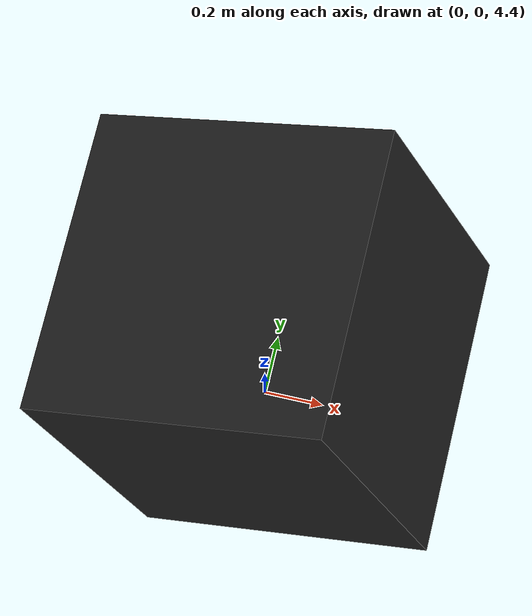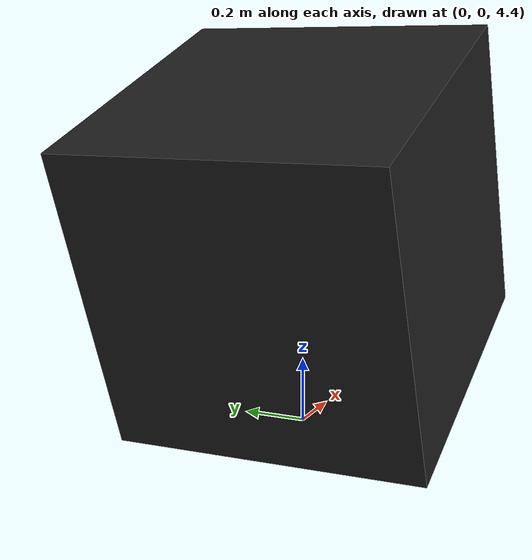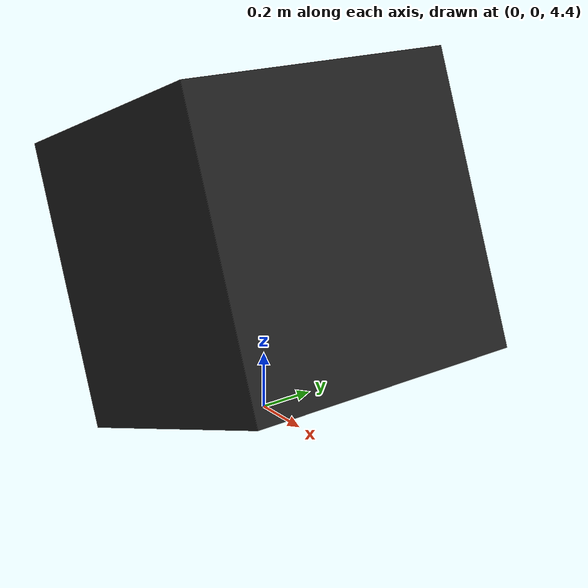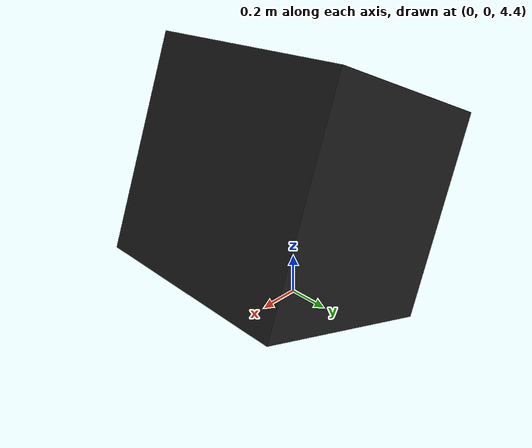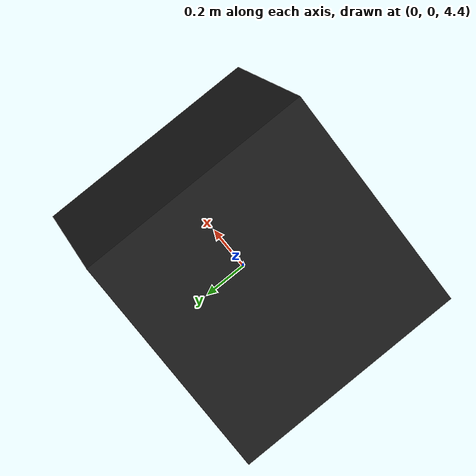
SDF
<?xml version='1.0'?>
<sdf version='1.6'>
  <model name='movable_camera_with_laser'>
      <pose frame=''>0 0 5 0.0 1.20 0.0</pose>
      <link name='link'>
        <inertial>
          <mass>0.1</mass>
          <inertia>
            <ixx>0.000166667</ixx>
            <iyy>0.000166667</iyy>
            <izz>0.000166667</izz>
            <ixy>0</ixy>
            <ixz>0</ixz>
            <iyz>0</iyz>
          </inertia>
        </inertial>
        <collision name='collision'>
          <geometry>
            <box>
              <size>1.0 1.0 1.0</size>
            </box>
          </geometry>
          <max_contacts>10</max_contacts>
          <surface>
            <contact>
              <ode/>
            </contact>
            <bounce/>
            <friction>
              <ode/>
            </friction>
          </surface>
        </collision>
        <visual name='visual'>
          <geometry>
            <box>
              <size>1.0 1.0 1.0</size>
            </box>
          </geometry>
          <material>
            <script>
              <name>Gazebo/Black</name>
            </script>
          </material>
        </visual>
        <sensor name='camera1' type='camera'>
          <camera name='__default__'>
            <horizontal_fov>2.0943</horizontal_fov>
            <image>
              <width>320</width>
              <height>240</height>
            </image>
            <clip>
              <near>0.1</near>
              <far>100</far>
            </clip>
            <save enabled='false'>
              <path>/home/emanuel/Descargas</path>
            </save>
          </camera>
          <always_on>1</always_on>
	  <!-- update rate no tiene que estar, jode con la
          visualizacion en la camara de la onda caustica-->
          <visualize>true</visualize>
          <plugin name='camera_controller' filename='libgazebo_ros_camera.so'>
            <alwaysOn>true</alwaysOn>
            <updateRate>30.0</updateRate>
            <cameraName>movable_camera</cameraName>
            <imageTopicName>image_raw</imageTopicName>
            <cameraInfoTopicName>camera_info</cameraInfoTopicName>
            <frameName>camera</frameName>
            <hackBaseline>0.07</hackBaseline>
            <distortionK1>0.0</distortionK1>
            <distortionK2>0.0</distortionK2>
            <distortionK3>0.0</distortionK3>
            <distortionT1>0.0</distortionT1>
            <distortionT2>0.0</distortionT2>
          </plugin>
        </sensor>
        <self_collide>0</self_collide>
        <kinematic>0</kinematic>
        <gravity>0</gravity>
      </link>
    <static>0</static>
    <allow_auto_disable>1</allow_auto_disable>
    <plugin name='object_controller' filename='libgazebo_ros_planar_move.so'>
      <commandTopic>movable_camera/cmd_vel</commandTopic>
      <odometryTopic>movable_camera/odom</odometryTopic>
      <odometryFrame>odom</odometryFrame>
      <odometryRate>20.0</odometryRate>
      <robotBaseFrame>link</robotBaseFrame>
    </plugin>
  </model>
</sdf>
